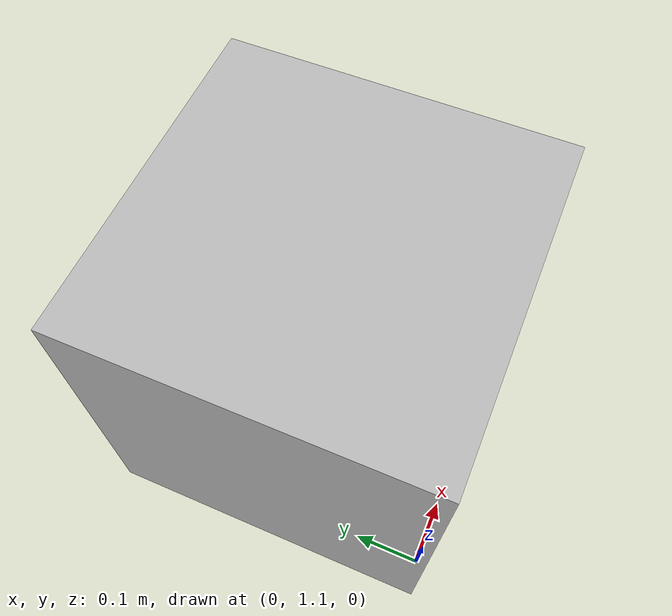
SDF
<?xml version='1.0'?>
  <sdf version='1.6'>
    <model name="Object3">
      <static>false</static>

      <link name='cube'>
        <pose>0.2 1.34 0.25 0 0 0</pose>

        <collision name='collision'>
          <geometry>
            <box>
              <size>.5 .5 .5</size>
            </box>
          </geometry>
        </collision>

        <surface>
          <friction>
            <ode>
              <mu>1</mu>
              <mu2>1</mu2>
              <slip1>1.0</slip1>
              <slip2>1.0</slip2>
            </ode>
          </friction>
        </surface>

        <visual name='visual'>
          <geometry>
            <box>
              <size>.5 .5 .5</size>
            </box>
          </geometry>
        </visual>
      </link>

    </model>
  </sdf>
